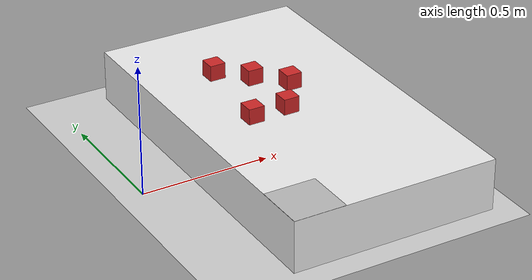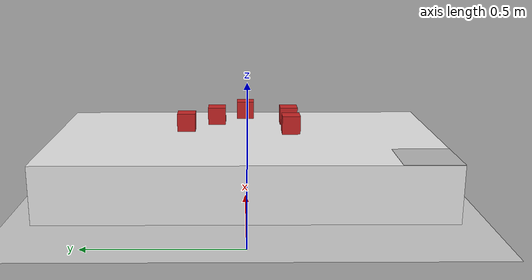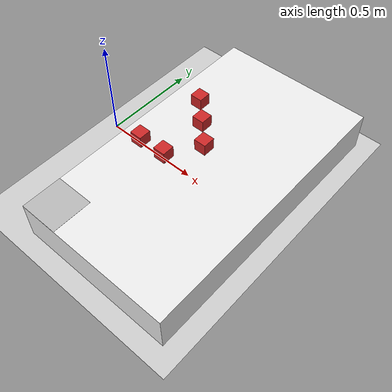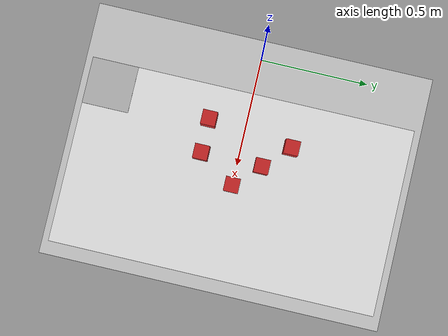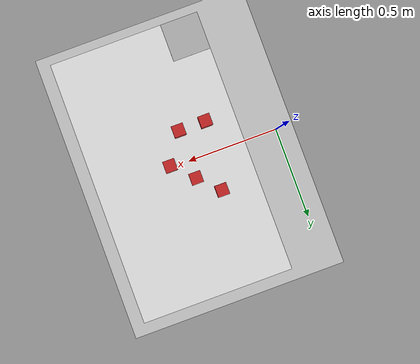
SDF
<?xml version="1.0" encoding="UTF-8" ?>
<sdf version="1.4">
  <world name="default">
    <!-- A global light source -->
    <include>
      <uri>model://sun</uri>
    </include>
    <!-- A ground plane -->
    <include>
      <uri>model://ground_plane</uri>
    </include>
    <!-- Our table. -->
    <model name='table'>
      <link name='main'>
        <pose>0 0 0 0 -0 0</pose>
          <collision name='collision'>
          <geometry>
            <box>
              <size>0.8 1.4 0.2</size>
            </box>
          </geometry>
          <max_contacts>10</max_contacts>
          <surface>
            <contact>
              <ode/>
            </contact>
            <bounce/>
            <friction>
              <torsional>
                <ode/>
              </torsional>
              <ode/>
            </friction>
          </surface>
        </collision>
        <visual name='visual'>
          <geometry>
            <box>
              <size>0.8 1.4 0.2</size>
            </box>
          </geometry>
          <material>
            <script>
              <uri>file://media/materials/scripts/gazebo.material</uri>
              <name>Gazebo/White</name>
            </script>
          </material>
        </visual>
        <self_collide>0</self_collide>
        <enable_wind>0</enable_wind>
        <kinematic>0</kinematic>
      </link>
      <static>1</static>
      <pose>0.6 0 0.1 0 0 0</pose>
    </model>

    <!-- Cube 1. -->
    <model name='cube1'>
      <link name='main'>
        <pose>0.5 0.1 0.3 0 -0 0</pose>
          <collision name='collision'>
          <gravity>1</gravity>
          <inertial>
             <mass>1.5</mass> <!-- Set the mass of the cube -->
             <inertia>
                <ixx>0.083</ixx>
                <iyy>0.083</iyy>
                <izz>0.083</izz>
             </inertia>
          </inertial>
          <geometry>
            <box>
              <size>0.06 0.06 0.06</size>
            </box>
          </geometry>
          <max_contacts>10</max_contacts>
          <surface>
            <contact>
              <ode/>
            </contact>
            <bounce/>
            <friction>
              <torsional>
                <ode/>
              </torsional>
              <ode/>
            </friction>
          </surface>
        </collision>
        <visual name='visual'>
          <geometry>
            <box>
              <size>0.06 0.06 0.06</size>
            </box>
          </geometry>
          <material>
            <script>
              <uri>file://media/materials/scripts/gazebo.material</uri>
              <name>Gazebo/Red</name>
            </script>
          </material>
        </visual>
      </link>
    </model>
    <!-- Cube 2. -->
    <model name='cube2'>
      <link name='main'>
        <pose>0.4 0.2 0.3 0 -0 0</pose>
          <collision name='collision'>
          <gravity>1</gravity>
          <inertial>
             <mass>1.5</mass> <!-- Set the mass of the cube -->
             <inertia>
                <ixx>0.083</ixx>
                <iyy>0.083</iyy>
                <izz>0.083</izz>
             </inertia>
          </inertial>
          <geometry>
            <box>
              <size>0.06 0.06 0.06</size>
            </box>
          </geometry>
          <max_contacts>10</max_contacts>
          <surface>
            <contact>
              <ode/>
            </contact>
            <bounce/>
            <friction>
              <torsional>
                <ode/>
              </torsional>
              <ode/>
            </friction>
          </surface>
        </collision>
        <visual name='visual'>
          <geometry>
            <box>
              <size>0.06 0.06 0.06</size>
            </box>
          </geometry>
          <material>
            <script>
              <uri>file://media/materials/scripts/gazebo.material</uri>
              <name>Gazebo/Red</name>
            </script>
          </material>
        </visual>
      </link>
    </model>
    <!-- Cube 3. -->
    <model name='cube3'>
      <link name='main'>
        <pose>0.36 -0.15 0.3 0 -0 0</pose>
          <collision name='collision'>
          <gravity>1</gravity>
          <inertial>
             <mass>1.5</mass> <!-- Set the mass of the cube -->
             <inertia>
                <ixx>0.083</ixx>
                <iyy>0.083</iyy>
                <izz>0.083</izz>
             </inertia>
          </inertial>
          <geometry>
            <box>
              <size>0.06 0.06 0.06</size>
            </box>
          </geometry>
          <max_contacts>10</max_contacts>
          <surface>
            <contact>
              <ode/>
            </contact>
            <bounce/>
            <friction>
              <torsional>
                <ode/>
              </torsional>
              <ode/>
            </friction>
          </surface>
        </collision>
        <visual name='visual'>
          <geometry>
            <box>
              <size>0.06 0.06 0.06</size>
            </box>
          </geometry>
          <material>
            <script>
              <uri>file://media/materials/scripts/gazebo.material</uri>
              <name>Gazebo/Red</name>
            </script>
          </material>
        </visual>
      </link>
    </model>
    <!-- Cube 5. -->
    <model name='cube5'>
      <link name='main'>
        <pose>0.6 -0.0 0.3 0 -0 0</pose>
          <collision name='collision'>
          <gravity>1</gravity>
          <inertial>
             <mass>1.5</mass> <!-- Set the mass of the cube -->
             <inertia>
                <ixx>0.083</ixx>
                <iyy>0.083</iyy>
                <izz>0.083</izz>
             </inertia>
          </inertial>
          <geometry>
            <box>
              <size>0.06 0.06 0.06</size>
            </box>
          </geometry>
          <max_contacts>10</max_contacts>
          <surface>
            <contact>
              <ode/>
            </contact>
            <bounce/>
            <friction>
              <torsional>
                <ode/>
              </torsional>
              <ode/>
            </friction>
          </surface>
        </collision>
        <visual name='visual'>
          <geometry>
            <box>
              <size>0.06 0.06 0.06</size>
            </box>
          </geometry>
          <material>
            <script>
              <uri>file://media/materials/scripts/gazebo.material</uri>
              <name>Gazebo/Red</name>
            </script>
          </material>
        </visual>
      </link>
    </model>
    <!-- Cube 4. -->
    <model name='cube4'>
      <link name='main'>
        <pose>0.5 -0.15 0.3 0 -0 0</pose>
          <collision name='collision'>
          <gravity>1</gravity>
          <inertial>
             <mass>1.5</mass> <!-- Set the mass of the cube -->
             <inertia>
                <ixx>0.083</ixx>
                <iyy>0.083</iyy>
                <izz>0.083</izz>
             </inertia>
          </inertial>
          <geometry>
            <box>
              <size>0.06 0.06 0.06</size>
            </box>
          </geometry>
          <max_contacts>10</max_contacts>
          <surface>
            <contact>
              <ode/>
            </contact>
            <bounce/>
            <friction>
              <torsional>
                <ode/>
              </torsional>
              <ode/>
            </friction>
          </surface>
        </collision>
        <visual name='visual'>
          <geometry>
            <box>
              <size>0.06 0.06 0.06</size>
            </box>
          </geometry>
          <material>
            <script>
              <uri>file://media/materials/scripts/gazebo.material</uri>
              <name>Gazebo/Red</name>
            </script>
          </material>
        </visual>
      </link>
    </model>

    <!-- Apriltag -->
    <model name='apriltag'>
      <link name='main'>
        <pose>0 0 0 0 -0 0</pose>
        <visual name='visual'>
          <geometry>
            <box>
              <size>0.20 0.20 0.001</size>
            </box>
          </geometry>
          <material>
            <script>
              <uri>model://Apriltag36_11_00000/materials/scripts</uri>
              <uri>model://Apriltag36_11_00000/materials/textures</uri>
              <name>Apriltag36_11_00000</name>
            </script>
          </material>
        </visual>
        <self_collide>0</self_collide>
        <enable_wind>0</enable_wind>
        <kinematic>0</kinematic>
      </link>
      <static>1</static>
      <pose>0.3 -0.6 0.2 0 -0 0</pose>
    </model>

    <!-- Physics -->
    <physics type="ode">
      <gravity>0 0 -9.81</gravity>
      <ode>
        <solver>
          <type>quick</type>
          <iters>10</iters>
          <sor>1.3</sor>
        </solver>
        <constraints>
          <cfm>0.0</cfm>
          <erp>0.2</erp>
          <contact_max_correcting_vel>10</contact_max_correcting_vel>
          <contact_surface_layer>0.001</contact_surface_layer>
        </constraints>
      </ode>
      <max_step_size>0.001</max_step_size>
    </physics>
  </world>
</sdf>
